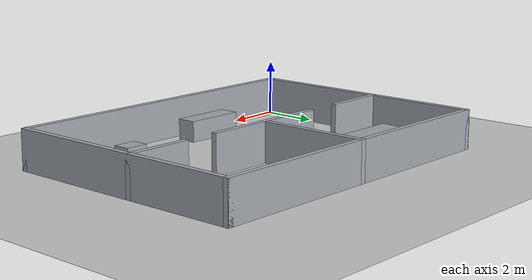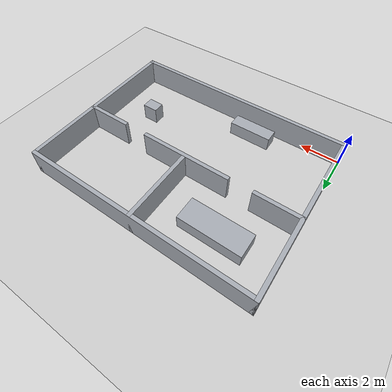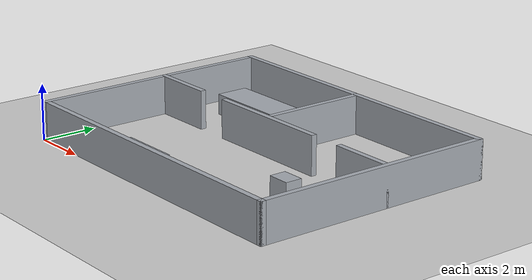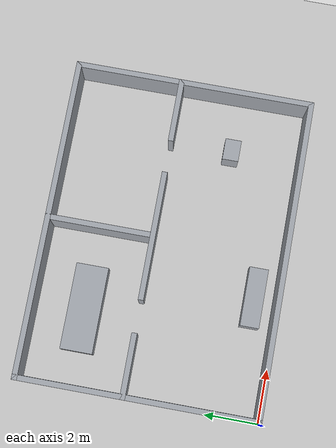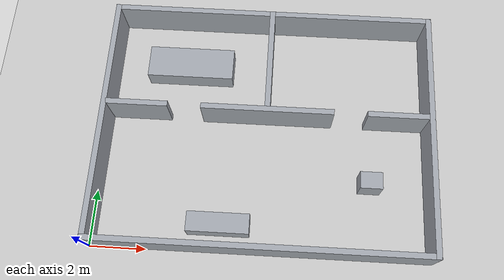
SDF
<?xml version="1.0"?>
<!-- generated by scripts/generate_map.py - edit demo_world.py instead -->
<sdf version="1.6">
  <world name="office">
    <include><uri>model://ground_plane</uri></include>
    <include><uri>model://sun</uri></include>

    <physics type="ode">
      <max_step_size>0.002</max_step_size>
      <real_time_factor>1.0</real_time_factor>
      <real_time_update_rate>500</real_time_update_rate>
    </physics>

    <model name="wall_south">
      <static>true</static>
      <pose>6.000 0.100 0.700 0 0 0</pose>
      <link name="link">
        <collision name="collision">
          <geometry><box><size>12.000 0.200 1.400</size></box></geometry>
        </collision>
        <visual name="visual">
          <geometry><box><size>12.000 0.200 1.400</size></box></geometry>
          <material><ambient>0.55 0.57 0.6 1</ambient>
                    <diffuse>0.65 0.67 0.7 1</diffuse></material>
        </visual>
      </link>
    </model>
    <model name="wall_north">
      <static>true</static>
      <pose>6.000 8.900 0.700 0 0 0</pose>
      <link name="link">
        <collision name="collision">
          <geometry><box><size>12.000 0.200 1.400</size></box></geometry>
        </collision>
        <visual name="visual">
          <geometry><box><size>12.000 0.200 1.400</size></box></geometry>
          <material><ambient>0.55 0.57 0.6 1</ambient>
                    <diffuse>0.65 0.67 0.7 1</diffuse></material>
        </visual>
      </link>
    </model>
    <model name="wall_west">
      <static>true</static>
      <pose>0.100 4.500 0.700 0 0 0</pose>
      <link name="link">
        <collision name="collision">
          <geometry><box><size>0.200 9.000 1.400</size></box></geometry>
        </collision>
        <visual name="visual">
          <geometry><box><size>0.200 9.000 1.400</size></box></geometry>
          <material><ambient>0.55 0.57 0.6 1</ambient>
                    <diffuse>0.65 0.67 0.7 1</diffuse></material>
        </visual>
      </link>
    </model>
    <model name="wall_east">
      <static>true</static>
      <pose>11.900 4.500 0.700 0 0 0</pose>
      <link name="link">
        <collision name="collision">
          <geometry><box><size>0.200 9.000 1.400</size></box></geometry>
        </collision>
        <visual name="visual">
          <geometry><box><size>0.200 9.000 1.400</size></box></geometry>
          <material><ambient>0.55 0.57 0.6 1</ambient>
                    <diffuse>0.65 0.67 0.7 1</diffuse></material>
        </visual>
      </link>
    </model>
    <model name="divider_a">
      <static>true</static>
      <pose>1.200 5.000 0.700 0 0 0</pose>
      <link name="link">
        <collision name="collision">
          <geometry><box><size>2.400 0.200 1.400</size></box></geometry>
        </collision>
        <visual name="visual">
          <geometry><box><size>2.400 0.200 1.400</size></box></geometry>
          <material><ambient>0.55 0.57 0.6 1</ambient>
                    <diffuse>0.65 0.67 0.7 1</diffuse></material>
        </visual>
      </link>
    </model>
    <model name="divider_b">
      <static>true</static>
      <pose>6.000 5.000 0.700 0 0 0</pose>
      <link name="link">
        <collision name="collision">
          <geometry><box><size>4.800 0.200 1.400</size></box></geometry>
        </collision>
        <visual name="visual">
          <geometry><box><size>4.800 0.200 1.400</size></box></geometry>
          <material><ambient>0.55 0.57 0.6 1</ambient>
                    <diffuse>0.65 0.67 0.7 1</diffuse></material>
        </visual>
      </link>
    </model>
    <model name="divider_c">
      <static>true</static>
      <pose>10.800 5.000 0.700 0 0 0</pose>
      <link name="link">
        <collision name="collision">
          <geometry><box><size>2.400 0.200 1.400</size></box></geometry>
        </collision>
        <visual name="visual">
          <geometry><box><size>2.400 0.200 1.400</size></box></geometry>
          <material><ambient>0.55 0.57 0.6 1</ambient>
                    <diffuse>0.65 0.67 0.7 1</diffuse></material>
        </visual>
      </link>
    </model>
    <model name="partition">
      <static>true</static>
      <pose>6.000 7.050 0.700 0 0 0</pose>
      <link name="link">
        <collision name="collision">
          <geometry><box><size>0.200 3.900 1.400</size></box></geometry>
        </collision>
        <visual name="visual">
          <geometry><box><size>0.200 3.900 1.400</size></box></geometry>
          <material><ambient>0.55 0.57 0.6 1</ambient>
                    <diffuse>0.65 0.67 0.7 1</diffuse></material>
        </visual>
      </link>
    </model>
    <model name="reception_desk">
      <static>true</static>
      <pose>4.500 0.950 0.375 0 0 0</pose>
      <link name="link">
        <collision name="collision">
          <geometry><box><size>2.200 0.700 0.750</size></box></geometry>
        </collision>
        <visual name="visual">
          <geometry><box><size>2.200 0.700 0.750</size></box></geometry>
          <material><ambient>0.55 0.57 0.6 1</ambient>
                    <diffuse>0.65 0.67 0.7 1</diffuse></material>
        </visual>
      </link>
    </model>
    <model name="printer_table">
      <static>true</static>
      <pose>9.800 2.700 0.450 0 0 0</pose>
      <link name="link">
        <collision name="collision">
          <geometry><box><size>0.800 0.600 0.900</size></box></geometry>
        </collision>
        <visual name="visual">
          <geometry><box><size>0.800 0.600 0.900</size></box></geometry>
          <material><ambient>0.55 0.57 0.6 1</ambient>
                    <diffuse>0.65 0.67 0.7 1</diffuse></material>
        </visual>
      </link>
    </model>
    <model name="meeting_table">
      <static>true</static>
      <pose>3.000 7.000 0.375 0 0 0</pose>
      <link name="link">
        <collision name="collision">
          <geometry><box><size>3.200 1.200 0.750</size></box></geometry>
        </collision>
        <visual name="visual">
          <geometry><box><size>3.200 1.200 0.750</size></box></geometry>
          <material><ambient>0.55 0.57 0.6 1</ambient>
                    <diffuse>0.65 0.67 0.7 1</diffuse></material>
        </visual>
      </link>
    </model>
  </world>
</sdf>
